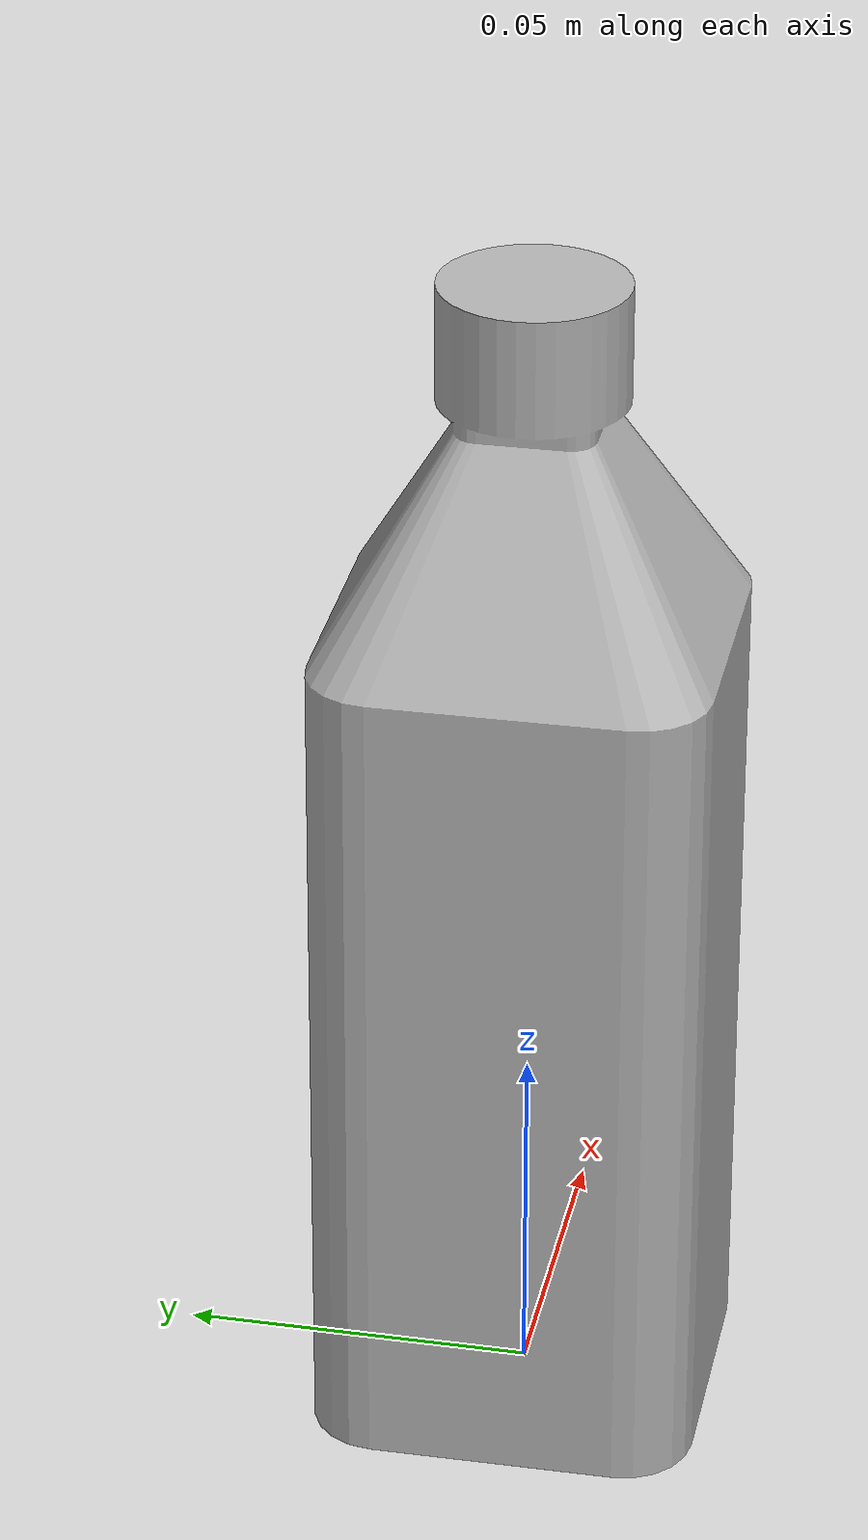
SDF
<?xml version="1.0" ?>

<sdf version="1.5">
  <model name="nrp_7eleven_bottle_coffee">
    <static>true</static>
    <link name="link">
      <visual name="visual">
        <geometry>
          <mesh>
            <uri>model://nrp_7eleven_bottle_coffee/meshes/nrp_7eleven_bottle_coffee.dae</uri>
          </mesh>
        </geometry>
        <material>
          <emissive>0.5 0.5 0.5 1</emissive>
        </material>
      </visual>
    </link>
  </model>
</sdf>
